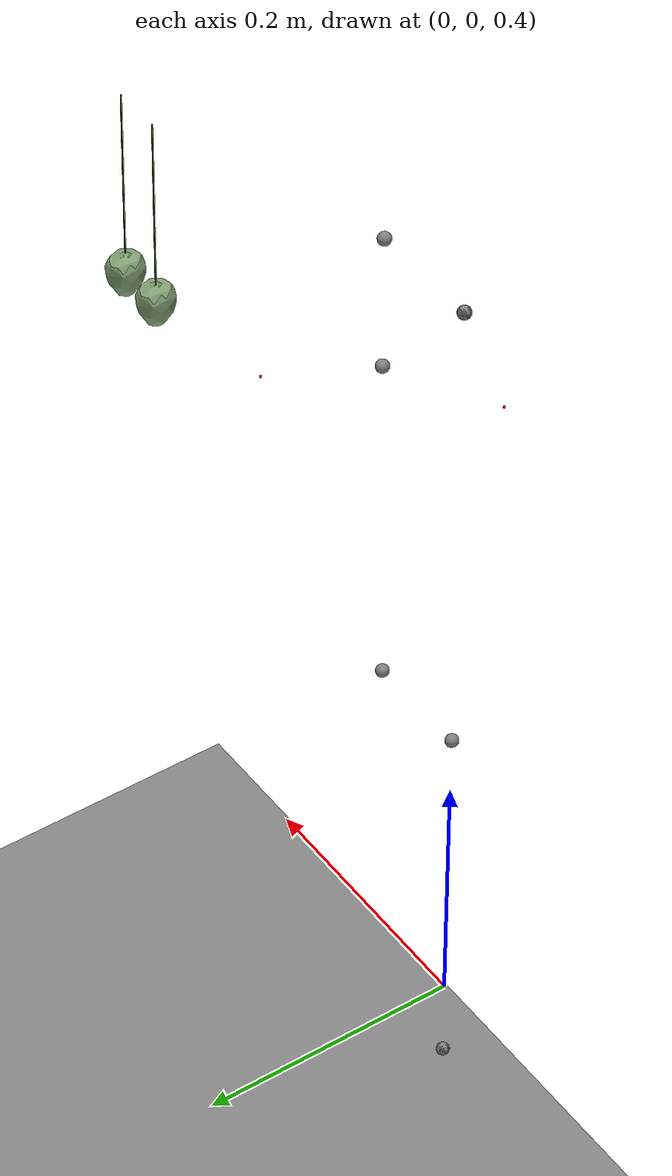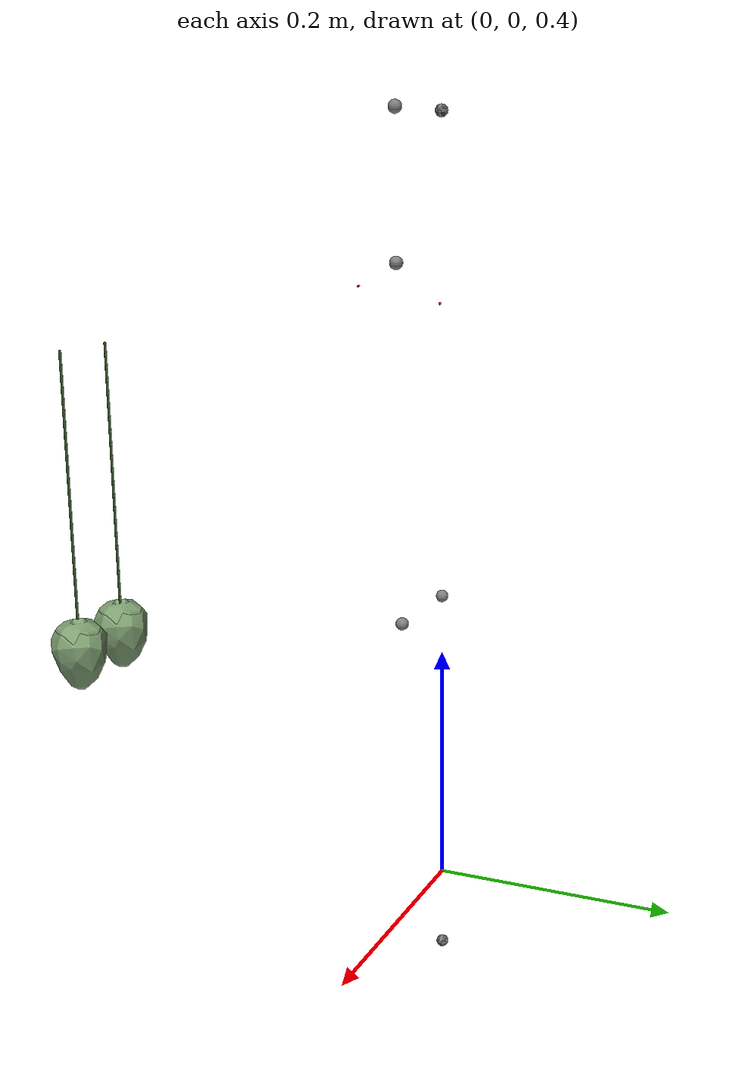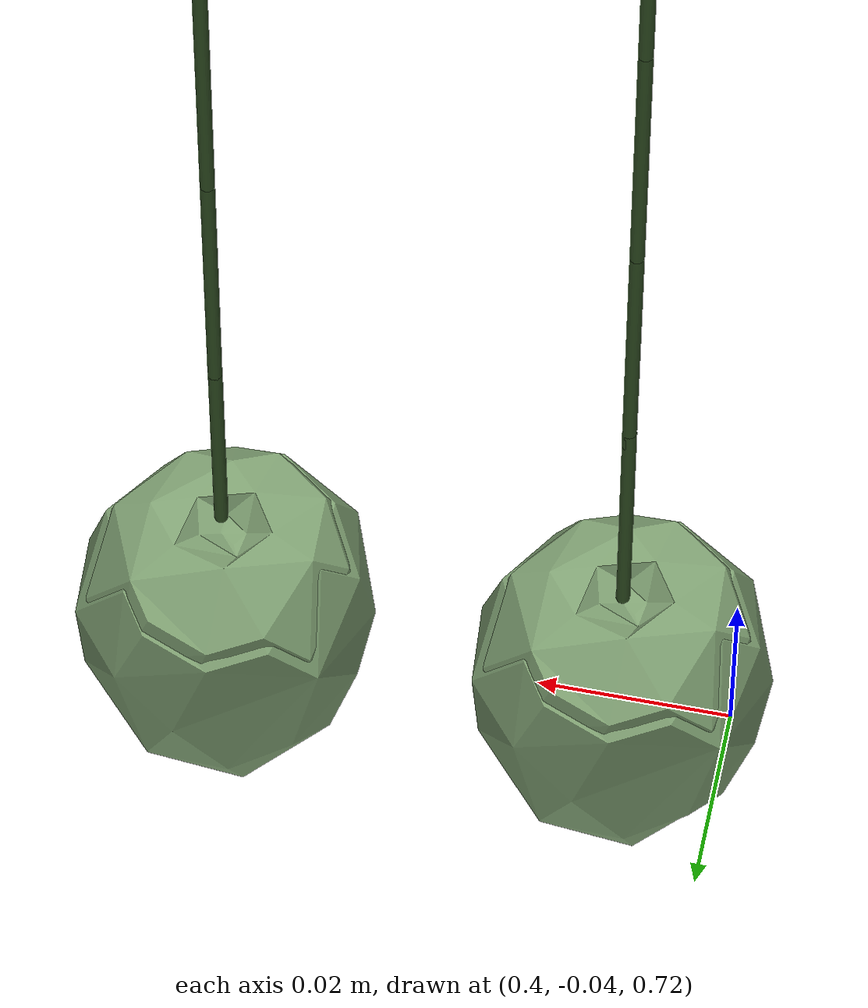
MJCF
<mujoco model="fruit_gym_physics_only">
  <compiler angle="radian" meshdir="assets/"/>

  <option noslip_tolerance="0" viscosity="0.0009" integrator="implicitfast" noslip_iterations="5">
    <flag multiccd="enable"/>
  </option>

  <size memory="80M"/>

  <statistic extent="1" center="0.3 0 0.4"/>

  <default>
    <default class="panda">
      <joint range="-2.8973 2.8973" armature="0.1" damping="1"/>
      <default class="finger">
        <joint type="slide" range="0 0.04"/>
      </default>
      <default class="collision">
        <geom type="mesh" group="3"/>
      </default>
    </default>
    <default class="d435i">
      <default class="d435i_collision">
        <geom type="mesh" group="3"/>
      </default>
    </default>
  </default>

  <custom>
    <text name="composite_a" data="rope_a"/>
    <text name="composite_b" data="rope_b"/>
    <text name="composite_c" data="rope_c"/>
  </custom>

  <asset>
    <material name="white" class="panda"/>
    <material name="off_white" class="panda"/>
    <material name="black" class="panda"/>
    <material name="Metal_Casing" class="d435i"/>
    <mesh name="link0_c" file="link0.stl"/>
    <mesh name="link1_c" file="link1.stl"/>
    <mesh name="link2_c" file="link2.stl"/>
    <mesh name="link3_c" file="link3.stl"/>
    <mesh name="link4_c" file="link4.stl"/>
    <mesh name="link5_c0" file="link5_collision_0.obj"/>
    <mesh name="link5_c1" file="link5_collision_1.obj"/>
    <mesh name="link5_c2" file="link5_collision_2.obj"/>
    <mesh name="link6_c" file="link6.stl"/>
    <mesh name="link7_c" file="link7.stl"/>
    <mesh name="finger_0" file="finger_0.obj"/>
    <mesh name="finger_1" file="finger_1.obj"/>
    <mesh name="camera_mount_c" file="camera_mount_collision_straight.stl"/>
    <mesh name="hand_c" file="hand.stl"/>
    <mesh name="gripper_long_inner" file="gripper_long_inner_new.stl"/>
    <mesh name="gripper_long_outer" file="gripper_long_outer_new.stl"/>

    <mesh name="strawberry_collision" file="strawberry_collision.obj" scale="0.12 0.12 0.12"/>
    <mesh name="strawberry_collision_big" file="strawberry_collision.obj" scale="0.13 0.13 0.13"/>
    <mesh name="strawberry_collision_small" file="strawberry_collision.obj" scale="0.11 0.11 0.11"/>
  </asset>

  <worldbody>
    <geom name="floor" size="0 0 0.05" pos="0 0 0" type="plane"/>
    <body name="link0" childclass="panda">
      <inertial pos="-0.041018 -0.00014 0.049974" quat="0.00630474 0.751245 0.00741774 0.659952" mass="0.629769" diaginertia="0.00430465 0.00387984 0.00313051"/>
      <geom class="collision" mesh="link0_c"/>
      <body name="link1" pos="0 0 0.333">
        <inertial pos="0.003875 0.002081 -0.04762" quat="0.711549 0.00634377 -0.0131124 0.702485" mass="4.97068" diaginertia="0.707137 0.703435 0.00852456"/>
        <joint name="joint1" pos="0 0 0" axis="0 0 1"/>
        <geom class="collision" mesh="link1_c"/>
        <site name="joint1" pos="0 0 0"/>
        <body name="link2" quat="0.707107 -0.707107 0 0">
          <inertial pos="-0.003141 -0.02872 0.003495" quat="-0.168175 0.828366 -0.122878 0.520027" mass="0.646926" diaginertia="0.0310326 0.0283001 0.00273425"/>
          <joint name="joint2" pos="0 0 0" axis="0 0 1" range="-1.7628 1.7628"/>
          <geom class="collision" mesh="link2_c"/>
          <site name="joint2" pos="0 0 0"/>
          <body name="link3" pos="0 -0.316 0" quat="0.707107 0.707107 0 0">
            <inertial pos="0.027518 0.039252 -0.066502" quat="0.662769 -0.00678331 0.252053 0.705096" mass="3.2286" diaginertia="0.0415014 0.0414793 0.00124635"/>
            <joint name="joint3" pos="0 0 0" axis="0 0 1"/>
            <geom class="collision" mesh="link3_c"/>
            <site name="joint3" pos="0 0 0"/>
            <body name="link4" pos="0.0825 0 0" quat="0.707107 0.707107 0 0">
              <inertial pos="-0.05317 0.104419 0.027454" quat="0.65058 0.529822 -0.0962034 0.535518" mass="3.5879" diaginertia="0.0349596 0.0281483 0.0106201"/>
              <joint name="joint4" pos="0 0 0" axis="0 0 1" range="-3.0718 -0.0698"/>
              <geom class="collision" mesh="link4_c"/>
              <site name="joint4" pos="0 0 0"/>
              <body name="link5" pos="-0.0825 0.384 0" quat="0.707107 -0.707107 0 0">
                <inertial pos="-0.011953 0.041065 -0.038437" quat="0.987313 -0.0121954 0.0719187 -0.141037" mass="1.22595" diaginertia="0.0367625 0.0288531 0.00803437"/>
                <joint name="joint5" pos="0 0 0" axis="0 0 1"/>
                <geom class="collision" mesh="link5_c0"/>
                <geom class="collision" mesh="link5_c1"/>
                <geom class="collision" mesh="link5_c2"/>
                <site name="joint5" pos="0 0 0"/>
                <body name="link6" quat="0.707107 0.707107 0 0">
                  <inertial pos="0.060149 -0.014117 -0.010517" quat="0.101075 0.59332 0.0287227 0.798079" mass="1.66656" diaginertia="0.00584276 0.00431037 0.00159787"/>
                  <joint name="joint6" pos="0 0 0" axis="0 0 1" range="-0.0175 3.7525"/>
                  <geom class="collision" mesh="link6_c"/>
                  <site name="joint6" pos="0 0 0"/>
                  <body name="link7" pos="0.088 0 0" quat="0.707107 0.707107 0 0">
                    <inertial pos="0.010517 -0.004252 0.061597" quat="0.992939 -0.0762041 0.0733595 -0.0537067" mass="0.735522" diaginertia="0.0127345 0.0101055 0.00451803"/>
                    <joint name="joint7" pos="0 0 0" axis="0 0 1"/>
                    <geom class="collision" mesh="link7_c"/>
                    <site name="joint7" pos="0 0 0"/>
                    <body name="camera_mount" pos="0 0 0.107">
                      <inertial pos="0 0 0" mass="0.5" diaginertia="0 0 0"/>
                      <geom class="collision" mesh="camera_mount_c"/>
                      <body name="d435i_1" childclass="d435i" pos="-0.079892 0.03393 0.026921" quat="0.909844 0.16043 0.0664523 0.37687">
                        <geom class="d435i_collision" size="0.00968864 0.0334784" pos="0.00145113 -0.000319327 -0.0135412" quat="0.029024 0.708312 0.0275527 0.704764" type="capsule" mass="0"/>
                        <site name="camera_1_site" pos="0.0325 0 -0.003" size="0.001" rgba="1 0 0 1"/>
                        <body name="wrist1" pos="0.0325 0 -0.003" quat="0 0 1 0">
                          <camera name="wrist1" pos="0 0 0" fovy="42"/>
                        </body>
                      </body>
                      <body name="d435i_2" childclass="d435i" pos="0.079892 -0.03393 0.026921" quat="0.376958 0.0664679 -0.160424 -0.909807">
                        <geom class="d435i_collision" size="0.00968864 0.0334784" pos="0.00145113 -0.000319327 -0.0135412" quat="0.029024 0.708312 0.0275527 0.704764" type="capsule" mass="0"/>
                        <site name="camera_2_site" pos="0.0325 0 -0.003" quat="0 0 1 0" size="0.001" rgba="1 0 0 1"/>
                        <body name="wrist2" pos="0.0325 0 -0.003" quat="0 0 1 0">
                          <camera name="wrist2" pos="0 0 0" fovy="42"/>
                        </body>
                      </body>
                      <body name="hand" pos="0 0 0.0016" quat="0.92388 0 0 -0.382683">
                        <inertial pos="-0.01 0 0.03" mass="0.73" diaginertia="0.001 0.0025 0.0017"/>
                        <geom class="collision" mesh="hand_c"/>
                        <site name="attachment_site" pos="0 0 0" quat="0 0 0 1"/>
                        <body name="pinch" pos="0 0 0.105">
                          <site name="pinch" pos="0 0 0" size="0.01" group="3" rgba="1 0 0 1"/>
                        </body>
                        <body name="long_pinch" pos="0 0 0.135">
                          <site name="long_pinch" pos="0 0 0" size="0.01" group="3" rgba="1 0 0 1"/>
                        </body>
                        <body name="left_finger" pos="0 0 0.0584">
                          <inertial pos="0 0 0" mass="0.015" diaginertia="2.375e-06 2.375e-06 7.5e-07"/>
                          <joint name="finger_joint1" class="finger" pos="0 0 0" axis="0 1 0"/>
                          <geom class="collision" mesh="finger_0"/>
                          <geom name="left_finger_outer" class="collision" friction="2.0 0.1 0.05" mesh="gripper_long_outer" solref="0.01 0.5"/>
                          <geom name="left_finger_inner" class="collision" friction="2.0 0.1 0.05" mesh="gripper_long_inner" solref="0.01 0.5"/>
                        </body>
                        <body name="right_finger" pos="0 0 0.0584" quat="0 0 0 1">
                          <inertial pos="0 0 0" mass="0.015" diaginertia="2.375e-06 2.375e-06 7.5e-07"/>
                          <joint name="finger_joint2" class="finger" pos="0 0 0" axis="0 1 0"/>
                          <geom class="collision" mesh="finger_0"/>
                          <geom name="right_finger_outer" class="collision" friction="2.0 0.1 0.05" mesh="gripper_long_outer" solref="0.01 0.5"/>
                          <geom name="right_finger_inner" class="collision" friction="2.0 0.1 0.05" mesh="gripper_long_inner" solref="0.01 0.5" group="4"/>
                        </body>
                      </body>
                    </body>
                  </body>
                </body>
              </body>
            </body>
          </body>
        </body>
      </body>
    </body>

    <body name="light0" pos="0.3 0 1.6">
      <light pos="0 0 0" dir="0 0 -1" ambient="0.1 0.1 0.1" diffuse="0.2 0.2 0.2"/>
    </body>
    <body name="target" pos="0.15 0 0.5" quat="1 0 0 0" mocap="true">
      <geom name="target" size="0.03 0.03 0.03" type="box" contype="0" conaffinity="0" rgba="0.6 0.3 0.3 0"/>
    </body>

    <body name="vine1" pos="0.45 -0.03 0.9" quat="0.707388 0 0.706825 0">
      <body name="aB_first">
        <joint name="aJ_first" pos="0 0 0" type="ball" group="3" actuatorfrclimited="false" damping="0.001"/>
        <geom name="aG0" size="0.0007 0.015" pos="0.015 0 0" quat="0.707107 0 -0.707107 0" type="capsule" solref="0.01 0.1" mass="0.0001" rgba="0.208 0.337 0.149 1"/>
        <site name="aS_first" pos="0 0 0" group="3"/>
        <body name="aB_1" pos="0.03 0 0">
          <joint name="aJ_1" pos="0 0 0" type="ball" group="3" actuatorfrclimited="false" damping="0.001"/>
          <geom name="aG1" size="0.0007 0.015" pos="0.015 0 0" quat="0.707107 0 -0.707107 0" type="capsule" solref="0.01 0.1" mass="0.0001" rgba="0.208 0.337 0.149 1"/>
          <body name="aB_2" pos="0.03 0 0">
            <joint name="aJ_2" pos="0 0 0" type="ball" group="3" actuatorfrclimited="false" damping="0.001"/>
            <geom name="aG2" size="0.0007 0.015" pos="0.015 0 0" quat="0.707107 0 -0.707107 0" type="capsule" solref="0.01 0.1" mass="0.0001" rgba="0.208 0.337 0.149 1"/>
            <body name="aB_last" pos="0.03 0 0">
              <joint name="aJ_last" pos="0 0 0" type="ball" group="3" actuatorfrclimited="false" damping="0.001"/>
              <geom name="aG3" size="0.0007 0.015" pos="0.015 0 0" quat="0.707107 0 -0.707107 0" type="capsule" solref="0.01 0.1" mass="0.0001" rgba="0.208 0.337 0.149 1"/>
              <site name="aS_last" pos="0.03 0 0" group="3"/>
              <body name="stem1" pos="0.091 -0.00024 0.00052" quat="0.707388 0 0 0.706825">
                <geom name="stem1" type="capsule" size="0.0007 0.012" pos="0.0002 0.049 -0.00055" euler="-1.57 0.0 0.0" rgba="0.208 0.337 0.149 1"/>
                <site name="stem1" pos="0.0001 0.054 -0.0004" size="0.0012" rgba="0 0 1 1" group="3"/>
                <site name="stem1_grasp" pos="0.0001 0.041 -0.0004" size="0.0012" rgba="0 0 1 1" group="3"/>
                <body name="block1" pos="0.0 0.001 0.0">
                  <site type="box" pos="0 0.015 0" size="0.015 0.02 0.015" group="3" rgba="0 1 0 0.2"/>
                  <geom name="block1" type="mesh" mesh="strawberry_collision" density="400" rgba="0.5 0.63 0.45 1"/>
                </body>
                <body name="block1_big" pos="0 -0.003 0">
                  <geom name="block1_big" type="mesh" mesh="strawberry_collision_big" density="400" rgba="0.5 0.63 0.45 1"/>
                </body>
                <body name="block1_small" pos="0 0.003 0">
                  <geom name="block1_small" type="mesh" mesh="strawberry_collision_small" density="400" rgba="0.5 0.63 0.45 1"/>
                </body>
              </body>
            </body>
          </body>
        </body>
      </body>
    </body>
    <body name="vine2" pos="0.41 -0.03 0.9" quat="0.707388 0 0.706825 0">
      <body name="bB_first">
        <joint name="bJ_first" pos="0 0 0" type="ball" group="3" actuatorfrclimited="false" damping="0.001"/>
        <geom name="bG0" size="0.0007 0.015" pos="0.015 0 0" quat="0.707107 0 -0.707107 0" type="capsule" solref="0.01 0.1" mass="0.0001" rgba="0.208 0.337 0.149 1"/>
        <site name="bS_first" pos="0 0 0" group="3"/>
        <body name="bB_1" pos="0.03 0 0">
          <joint name="bJ_1" pos="0 0 0" type="ball" group="3" actuatorfrclimited="false" damping="0.001"/>
          <geom name="bG1" size="0.0007 0.015" pos="0.015 0 0" quat="0.707107 0 -0.707107 0" type="capsule" solref="0.01 0.1" mass="0.0001" rgba="0.208 0.337 0.149 1"/>
          <body name="bB_2" pos="0.03 0 0">
            <joint name="bJ_2" pos="0 0 0" type="ball" group="3" actuatorfrclimited="false" damping="0.001"/>
            <geom name="bG2" size="0.0007 0.015" pos="0.015 0 0" quat="0.707107 0 -0.707107 0" type="capsule" solref="0.01 0.1" mass="0.0001" rgba="0.208 0.337 0.149 1"/>
            <body name="bB_last" pos="0.03 0 0">
              <joint name="bJ_last" pos="0 0 0" type="ball" group="3" actuatorfrclimited="false" damping="0.001"/>
              <geom name="bG3" size="0.0007 0.015" pos="0.015 0 0" quat="0.707107 0 -0.707107 0" type="capsule" solref="0.01 0.1" mass="0.0001" rgba="0.208 0.337 0.149 1"/>
              <site name="bS_last" pos="0.03 0 0" group="3"/>
              <body name="stem2" pos="0.091 -0.00024 0.00052" quat="0.707388 0 0 0.706825">
                <geom name="stem2" type="capsule" size="0.0007 0.014" pos="0.0002 0.049 -0.00055" euler="-1.57 0.0 0.0" rgba="0.208 0.337 0.149 1"/>
                <site name="stem2" pos="0.0001 0.054 -0.0004" size="0.0012" rgba="0 0 1 1" group="3"/>
                <site name="stem2_grasp" pos="0.0001 0.041 -0.0004" size="0.0012" rgba="0 0 1 1" group="3"/>
                <body name="block2" pos="0.0 0.001 0.0">
                  <geom name="block2" type="mesh" mesh="strawberry_collision" density="400" rgba="0.5 0.63 0.45 1"/>
                </body>
                <body name="block2_big" pos="0 -0.003 0">
                  <geom name="block2_big" type="mesh" mesh="strawberry_collision_big" density="400" rgba="0.5 0.63 0.45 1"/>
                </body>
                <body name="block2_small" pos="0 0.003 0">
                  <geom name="block2_small" type="mesh" mesh="strawberry_collision_small" density="400" rgba="0.5 0.63 0.45 1"/>
                </body>
              </body>
            </body>
          </body>
        </body>
      </body>
    </body>

    <body name="vine3" pos="0.41 -0.03 0.9" quat="0.707388 0 0.706825 0">
      <body name="cB_first">
        <joint name="cJ_first" pos="0 0 0" type="ball" group="3" actuatorfrclimited="false" damping="0.001"/>
        <geom name="cG0" size="0.0007 0.015" pos="0.015 0 0" quat="0.707107 0 -0.707107 0" type="capsule" solref="0.01 0.1" mass="0.0001" rgba="0.208 0.337 0.149 1"/>
        <site name="cS_first" pos="0 0 0" group="3"/>
        <body name="cB_1" pos="0.03 0 0">
          <joint name="cJ_1" pos="0 0 0" type="ball" group="3" actuatorfrclimited="false" damping="0.001"/>
          <geom name="cG1" size="0.0007 0.015" pos="0.015 0 0" quat="0.707107 0 -0.707107 0" type="capsule" solref="0.01 0.1" mass="0.0001" rgba="0.208 0.337 0.149 1"/>
          <body name="cB_2" pos="0.03 0 0">
            <joint name="cJ_2" pos="0 0 0" type="ball" group="3" actuatorfrclimited="false" damping="0.001"/>
            <geom name="cG2" size="0.0007 0.015" pos="0.015 0 0" quat="0.707107 0 -0.707107 0" type="capsule" solref="0.01 0.1" mass="0.0001" rgba="0.208 0.337 0.149 1"/>
            <body name="cB_last" pos="0.03 0 0">
              <joint name="cJ_last" pos="0 0 0" type="ball" group="3" actuatorfrclimited="false" damping="0.001"/>
              <geom name="cG3" size="0.0007 0.015" pos="0.015 0 0" quat="0.707107 0 -0.707107 0" type="capsule" solref="0.01 0.1" mass="0.0001" rgba="0.208 0.337 0.149 1"/>
              <site name="cS_last" pos="0.03 0 0" group="3"/>
              <body name="stem3" pos="0.091 -0.00024 0.00052" quat="0.707388 0 0 0.706825">
                <geom name="stem3" type="capsule" size="0.0007 0.014" pos="0.0002 0.049 -0.00055" euler="-1.57 0.0 0.0" rgba="0.208 0.337 0.149 1"/>
                <site name="stem3" pos="0.0001 0.054 -0.0004" size="0.0012" rgba="0 0 1 1" group="3"/>
                <site name="stem3_grasp" pos="0.0001 0.041 -0.0004" size="0.0012" rgba="0 0 1 1" group="3"/>
                <body name="block3" pos="0.0 0.001 0.0">
                  <geom name="block3" type="mesh" mesh="strawberry_collision" density="400" rgba="0.5 0.63 0.45 1"/>
                </body>
                <body name="block3_big" pos="0 -0.003 0">
                  <geom name="block3_big" type="mesh" mesh="strawberry_collision_big" density="400" rgba="0.5 0.63 0.45 1"/>
                </body>
                <body name="block3_small" pos="0 0.003 0">
                  <geom name="block3_small" type="mesh" mesh="strawberry_collision_small" density="400" rgba="0.5 0.63 0.45 1"/>
                </body>
              </body>
            </body>
          </body>
        </body>
      </body>
    </body>

    <body name="vine4" pos="0.41 -0.03 0.9" quat="0.707388 0 0.706825 0">
      <body name="dB_first">
        <joint name="dJ_first" pos="0 0 0" type="ball" group="3" actuatorfrclimited="false" damping="0.001"/>
        <geom name="dG0" size="0.0007 0.015" pos="0.015 0 0" quat="0.707107 0 -0.707107 0" type="capsule" solref="0.01 0.1" mass="0.0001" rgba="0.208 0.337 0.149 1"/>
        <site name="dS_first" pos="0 0 0" group="3"/>
        <body name="dB_1" pos="0.03 0 0">
          <joint name="dJ_1" pos="0 0 0" type="ball" group="3" actuatorfrclimited="false" damping="0.001"/>
          <geom name="dG1" size="0.0007 0.015" pos="0.015 0 0" quat="0.707107 0 -0.707107 0" type="capsule" solref="0.01 0.1" mass="0.0001" rgba="0.208 0.337 0.149 1"/>
          <body name="dB_2" pos="0.03 0 0">
            <joint name="dJ_2" pos="0 0 0" type="ball" group="3" actuatorfrclimited="false" damping="0.001"/>
            <geom name="dG2" size="0.0007 0.015" pos="0.015 0 0" quat="0.707107 0 -0.707107 0" type="capsule" solref="0.01 0.1" mass="0.0001" rgba="0.208 0.337 0.149 1"/>
            <body name="dB_last" pos="0.03 0 0">
              <joint name="dJ_last" pos="0 0 0" type="ball" group="3" actuatorfrclimited="false" damping="0.001"/>
              <geom name="dG3" size="0.0007 0.015" pos="0.015 0 0" quat="0.707107 0 -0.707107 0" type="capsule" solref="0.01 0.1" mass="0.0001" rgba="0.208 0.337 0.149 1"/>
              <site name="dS_last" pos="0.03 0 0" group="3"/>
              <body name="stem4" pos="0.091 -0.00024 0.00052" quat="0.707388 0 0 0.706825">
                <geom name="stem4" type="capsule" size="0.0007 0.014" pos="0.0002 0.049 -0.00055" euler="-1.57 0.0 0.0" rgba="0.208 0.337 0.149 1"/>
                <site name="stem4" pos="0.0001 0.054 -0.0004" size="0.0012" rgba="0 0 1 1" group="3"/>
                <site name="stem4_grasp" pos="0.0001 0.041 -0.0004" size="0.0012" rgba="0 0 1 1" group="3"/>
                <body name="block4" pos="0.0 0.001 0.0">
                  <geom name="block4" type="mesh" mesh="strawberry_collision" density="400" rgba="0.5 0.63 0.45 1"/>
                </body>
                <body name="block4_big" pos="0 -0.003 0">
                  <geom name="block4_big" type="mesh" mesh="strawberry_collision_big" density="400" rgba="0.5 0.63 0.45 1"/>
                </body>
                <body name="block4_small" pos="0 0.003 0">
                  <geom name="block4_small" type="mesh" mesh="strawberry_collision_small" density="400" rgba="0.5 0.63 0.45 1"/>
                </body>
              </body>
            </body>
          </body>
        </body>
      </body>
    </body>

    <body name="vine5" pos="0.41 -0.03 0.9" quat="0.707388 0 0.706825 0">
      <body name="eB_first">
        <joint name="eJ_first" pos="0 0 0" type="ball" group="3" actuatorfrclimited="false" damping="0.001"/>
        <geom name="eG0" size="0.0007 0.015" pos="0.015 0 0" quat="0.707107 0 -0.707107 0" type="capsule" solref="0.01 0.1" mass="0.0001" rgba="0.208 0.337 0.149 1"/>
        <site name="eS_first" pos="0 0 0" group="3"/>
        <body name="eB_1" pos="0.03 0 0">
          <joint name="eJ_1" pos="0 0 0" type="ball" group="3" actuatorfrclimited="false" damping="0.001"/>
          <geom name="eG1" size="0.0007 0.015" pos="0.015 0 0" quat="0.707107 0 -0.707107 0" type="capsule" solref="0.01 0.1" mass="0.0001" rgba="0.208 0.337 0.149 1"/>
          <body name="eB_2" pos="0.03 0 0">
            <joint name="eJ_2" pos="0 0 0" type="ball" group="3" actuatorfrclimited="false" damping="0.001"/>
            <geom name="eG2" size="0.0007 0.015" pos="0.015 0 0" quat="0.707107 0 -0.707107 0" type="capsule" solref="0.01 0.1" mass="0.0001" rgba="0.208 0.337 0.149 1"/>
            <body name="eB_last" pos="0.03 0 0">
              <joint name="eJ_last" pos="0 0 0" type="ball" group="3" actuatorfrclimited="false" damping="0.001"/>
              <geom name="eG3" size="0.0007 0.015" pos="0.015 0 0" quat="0.707107 0 -0.707107 0" type="capsule" solref="0.01 0.1" mass="0.0001" rgba="0.208 0.337 0.149 1"/>
              <site name="eS_last" pos="0.03 0 0" group="3"/>
              <body name="stem5" pos="0.091 -0.00024 0.00052" quat="0.707388 0 0 0.706825">
                <geom name="stem5" type="capsule" size="0.0007 0.014" pos="0.0002 0.049 -0.00055" euler="-1.57 0.0 0.0" rgba="0.208 0.337 0.149 1"/>
                <site name="stem5" pos="0.0001 0.054 -0.0004" size="0.0012" rgba="0 0 1 1" group="3"/>
                <site name="stem5_grasp" pos="0.0001 0.041 -0.0004" size="0.0012" rgba="0 0 1 1" group="3"/>
                <body name="block5" pos="0.0 0.001 0.0">
                  <geom name="block5" type="mesh" mesh="strawberry_collision" density="400" rgba="0.5 0.63 0.45 1"/>
                </body>
                <body name="block5_big" pos="0 -0.003 0">
                  <geom name="block5_big" type="mesh" mesh="strawberry_collision_big" density="400" rgba="0.5 0.63 0.45 1"/>
                </body>
                <body name="block5_small" pos="0 0.003 0">
                  <geom name="block5_small" type="mesh" mesh="strawberry_collision_small" density="400" rgba="0.5 0.63 0.45 1"/>
                </body>
              </body>
            </body>
          </body>
        </body>
      </body>
    </body>

    <body name="vine6" pos="0.41 -0.03 0.9" quat="0.707388 0 0.706825 0">
      <body name="fB_first">
        <joint name="fJ_first" pos="0 0 0" type="ball" group="3" actuatorfrclimited="false" damping="0.001"/>
        <geom name="fG0" size="0.0007 0.015" pos="0.015 0 0" quat="0.707107 0 -0.707107 0" type="capsule" solref="0.01 0.1" mass="0.0001" rgba="0.208 0.337 0.149 1"/>
        <site name="fS_first" pos="0 0 0" group="3"/>
        <body name="fB_1" pos="0.03 0 0">
          <joint name="fJ_1" pos="0 0 0" type="ball" group="3" actuatorfrclimited="false" damping="0.001"/>
          <geom name="fG1" size="0.0007 0.015" pos="0.015 0 0" quat="0.707107 0 -0.707107 0" type="capsule" solref="0.01 0.1" mass="0.0001" rgba="0.208 0.337 0.149 1"/>
          <body name="fB_2" pos="0.03 0 0">
            <joint name="fJ_2" pos="0 0 0" type="ball" group="3" actuatorfrclimited="false" damping="0.001"/>
            <geom name="fG2" size="0.0007 0.015" pos="0.015 0 0" quat="0.707107 0 -0.707107 0" type="capsule" solref="0.01 0.1" mass="0.0001" rgba="0.208 0.337 0.149 1"/>
            <body name="fB_last" pos="0.03 0 0">
              <joint name="fJ_last" pos="0 0 0" type="ball" group="3" actuatorfrclimited="false" damping="0.001"/>
              <geom name="fG3" size="0.0007 0.015" pos="0.015 0 0" quat="0.707107 0 -0.707107 0" type="capsule" solref="0.01 0.1" mass="0.0001" rgba="0.208 0.337 0.149 1"/>
              <site name="fS_last" pos="0.03 0 0" group="3"/>
              <body name="stem6" pos="0.091 -0.00024 0.00052" quat="0.707388 0 0 0.706825">
                <geom name="stem6" type="capsule" size="0.0007 0.014" pos="0.0002 0.049 -0.00055" euler="-1.57 0.0 0.0" rgba="0.208 0.337 0.149 1"/>
                <site name="stem6" pos="0.0001 0.054 -0.0004" size="0.0012" rgba="0 0 1 1" group="3"/>
                <site name="stem6_grasp" pos="0.0001 0.041 -0.0004" size="0.0012" rgba="0 0 1 1" group="3"/>
                <body name="block6" pos="0.0 0.001 0.0">
                  <geom name="block6" type="mesh" mesh="strawberry_collision" density="400" rgba="0.5 0.63 0.45 1"/>
                </body>
                <body name="block6_big" pos="0 -0.003 0">
                  <geom name="block6_big" type="mesh" mesh="strawberry_collision_big" density="400" rgba="0.5 0.63 0.45 1"/>
                </body>
                <body name="block6_small" pos="0 0.003 0">
                  <geom name="block6_small" type="mesh" mesh="strawberry_collision_small" density="400" rgba="0.5 0.63 0.45 1"/>
                </body>
              </body>
            </body>
          </body>
        </body>
      </body>
    </body>

    <body name="vine7" pos="0.41 -0.03 0.9" quat="0.707388 0 0.706825 0">
      <body name="gB_first">
        <joint name="gJ_first" pos="0 0 0" type="ball" group="3" actuatorfrclimited="false" damping="0.001"/>
        <geom name="gG0" size="0.0007 0.015" pos="0.015 0 0" quat="0.707107 0 -0.707107 0" type="capsule" solref="0.01 0.1" mass="0.0001" rgba="0.208 0.337 0.149 1"/>
        <site name="gS_first" pos="0 0 0" group="3"/>
        <body name="gB_1" pos="0.03 0 0">
          <joint name="gJ_1" pos="0 0 0" type="ball" group="3" actuatorfrclimited="false" damping="0.001"/>
          <geom name="gG1" size="0.0007 0.015" pos="0.015 0 0" quat="0.707107 0 -0.707107 0" type="capsule" solref="0.01 0.1" mass="0.0001" rgba="0.208 0.337 0.149 1"/>
          <body name="gB_2" pos="0.03 0 0">
            <joint name="gJ_2" pos="0 0 0" type="ball" group="3" actuatorfrclimited="false" damping="0.001"/>
            <geom name="gG2" size="0.0007 0.015" pos="0.015 0 0" quat="0.707107 0 -0.707107 0" type="capsule" solref="0.01 0.1" mass="0.0001" rgba="0.208 0.337 0.149 1"/>
            <body name="gB_last" pos="0.03 0 0">
              <joint name="gJ_last" pos="0 0 0" type="ball" group="3" actuatorfrclimited="false" damping="0.001"/>
              <geom name="gG3" size="0.0007 0.015" pos="0.015 0 0" quat="0.707107 0 -0.707107 0" type="capsule" solref="0.01 0.1" mass="0.0001" rgba="0.208 0.337 0.149 1"/>
              <site name="gS_last" pos="0.03 0 0" group="3"/>
              <body name="stem7" pos="0.091 -0.00024 0.00052" quat="0.707388 0 0 0.706825">
                <geom name="stem7" type="capsule" size="0.0007 0.014" pos="0.0002 0.049 -0.00055" euler="-1.57 0.0 0.0" rgba="0.208 0.337 0.149 1"/>
                <site name="stem7" pos="0.0001 0.054 -0.0004" size="0.0012" rgba="0 0 1 1" group="3"/>
                <site name="stem7_grasp" pos="0.0001 0.041 -0.0004" size="0.0012" rgba="0 0 1 1" group="3"/>
                <body name="block7" pos="0.0 0.001 0.0">
                  <geom name="block7" type="mesh" mesh="strawberry_collision" density="400" rgba="0.5 0.63 0.45 1"/>
                </body>
                <body name="block7_big" pos="0 -0.003 0">
                  <geom name="block7_big" type="mesh" mesh="strawberry_collision_big" density="400" rgba="0.5 0.63 0.45 1"/>
                </body>
                <body name="block7_small" pos="0 0.003 0">
                  <geom name="block7_small" type="mesh" mesh="strawberry_collision_small" density="400" rgba="0.5 0.63 0.45 1"/>
                </body>
              </body>
            </body>
          </body>
        </body>
      </body>
    </body>

    <body name="vine8" pos="0.41 -0.03 0.9" quat="0.707388 0 0.706825 0">
      <body name="hB_first">
        <joint name="hJ_first" pos="0 0 0" type="ball" group="3" actuatorfrclimited="false" damping="0.001"/>
        <geom name="hG0" size="0.0007 0.015" pos="0.015 0 0" quat="0.707107 0 -0.707107 0" type="capsule" solref="0.01 0.1" mass="0.0001" rgba="0.208 0.337 0.149 1"/>
        <site name="hS_first" pos="0 0 0" group="3"/>
        <body name="hB_1" pos="0.03 0 0">
          <joint name="hJ_1" pos="0 0 0" type="ball" group="3" actuatorfrclimited="false" damping="0.001"/>
          <geom name="hG1" size="0.0007 0.015" pos="0.015 0 0" quat="0.707107 0 -0.707107 0" type="capsule" solref="0.01 0.1" mass="0.0001" rgba="0.208 0.337 0.149 1"/>
          <body name="hB_2" pos="0.03 0 0">
            <joint name="hJ_2" pos="0 0 0" type="ball" group="3" actuatorfrclimited="false" damping="0.001"/>
            <geom name="hG2" size="0.0007 0.015" pos="0.015 0 0" quat="0.707107 0 -0.707107 0" type="capsule" solref="0.01 0.1" mass="0.0001" rgba="0.208 0.337 0.149 1"/>
            <body name="hB_last" pos="0.03 0 0">
              <joint name="hJ_last" pos="0 0 0" type="ball" group="3" actuatorfrclimited="false" damping="0.001"/>
              <geom name="hG3" size="0.0007 0.015" pos="0.015 0 0" quat="0.707107 0 -0.707107 0" type="capsule" solref="0.01 0.1" mass="0.0001" rgba="0.208 0.337 0.149 1"/>
              <site name="hS_last" pos="0.03 0 0" group="3"/>
              <body name="stem8" pos="0.091 -0.00024 0.00052" quat="0.707388 0 0 0.706825">
                <geom name="stem8" type="capsule" size="0.0007 0.014" pos="0.0002 0.049 -0.00055" euler="-1.57 0.0 0.0" rgba="0.208 0.337 0.149 1"/>
                <site name="stem8" pos="0.0001 0.054 -0.0004" size="0.0012" rgba="0 0 1 1" group="3"/>
                <site name="stem8_grasp" pos="0.0001 0.041 -0.0004" size="0.0012" rgba="0 0 1 1" group="3"/>
                <body name="block8" pos="0.0 0.001 0.0">
                  <geom name="block8" type="mesh" mesh="strawberry_collision" density="400" rgba="0.5 0.63 0.45 1"/>
                </body>
                <body name="block8_big" pos="0 -0.003 0">
                  <geom name="block8_big" type="mesh" mesh="strawberry_collision_big" density="400" rgba="0.5 0.63 0.45 1"/>
                </body>
                <body name="block8_small" pos="0 0.003 0">
                  <geom name="block8_small" type="mesh" mesh="strawberry_collision_small" density="400" rgba="0.5 0.63 0.45 1"/>
                </body>
              </body>
            </body>
          </body>
        </body>
      </body>
    </body>
  </worldbody>

  <contact>
    <exclude body1="aB_first" body2="aB_1"/>
    <exclude body1="aB_1" body2="aB_2"/>
    <exclude body1="aB_2" body2="aB_last"/>
    <exclude body1="aB_last" body2="stem1"/>
    <exclude body1="bB_first" body2="bB_1"/>
    <exclude body1="bB_1" body2="bB_2"/>
    <exclude body1="bB_2" body2="bB_last"/>
    <exclude body1="bB_last" body2="stem2"/>
    <exclude body1="cB_first" body2="cB_1"/>
    <exclude body1="cB_1" body2="cB_2"/>
    <exclude body1="cB_2" body2="cB_last"/>
    <exclude body1="cB_last" body2="stem3"/>
    <exclude body1="dB_first" body2="dB_1"/>
    <exclude body1="dB_1" body2="dB_2"/>
    <exclude body1="dB_2" body2="dB_last"/>
    <exclude body1="dB_last" body2="stem4"/>
    <exclude body1="eB_first" body2="eB_1"/>
    <exclude body1="eB_1" body2="eB_2"/>
    <exclude body1="eB_2" body2="eB_last"/>
    <exclude body1="eB_last" body2="stem5"/>
    <exclude body1="fB_first" body2="fB_1"/>
    <exclude body1="fB_1" body2="fB_2"/>
    <exclude body1="fB_2" body2="fB_last"/>
    <exclude body1="cB_last" body2="stem6"/>
    <exclude body1="gB_first" body2="gB_1"/>
    <exclude body1="gB_1" body2="gB_2"/>
    <exclude body1="gB_2" body2="gB_last"/>
    <exclude body1="gB_last" body2="stem7"/>
    <exclude body1="hB_first" body2="hB_1"/>
    <exclude body1="hB_1" body2="hB_2"/>
    <exclude body1="hB_2" body2="hB_last"/>
    <exclude body1="hB_last" body2="stem8"/>
  </contact>

  <equality>
    <joint joint1="finger_joint1" joint2="finger_joint2" solimp="0.95 0.99 0.001" solref="0.005 1"/>
  </equality>

  <actuator>
    <general name="actuator1" class="panda" joint="joint1" forcerange="-87 87"/>
    <general name="actuator2" class="panda" joint="joint2" forcerange="-87 87"/>
    <general name="actuator3" class="panda" joint="joint3" forcerange="-87 87"/>
    <general name="actuator4" class="panda" joint="joint4" forcerange="-87 87"/>
    <general name="actuator5" class="panda" joint="joint5" forcerange="-12 12"/>
    <general name="actuator6" class="panda" joint="joint6" forcerange="-12 12"/>
    <general name="actuator7" class="panda" joint="joint7" forcerange="-12 12"/>
    <position name="fingers_actuator" joint="finger_joint1" kp="5000" kv="500" ctrlrange="0 0.04" forcerange="-100 100"/>
  </actuator>

  <sensor>
    <force site="attachment_site" name="panda/wrist_force"/>
    <framepos objtype="site" objname="pinch" name="pinch_pos"/>
    <framequat objtype="site" objname="pinch" name="pinch_quat"/>
    <framelinvel objtype="site" objname="pinch" name="pinch_vel"/>
    <framepos objtype="site" objname="long_pinch" name="long_pinch_pos"/>
    <framequat objtype="site" objname="long_pinch" name="long_pinch_quat"/>
    <framelinvel objtype="site" objname="long_pinch" name="long_pinch_vel"/>
    <framequat objtype="geom" objname="block1" name="block_quat"/>
    <framepos objtype="site" objname="stem1_grasp" name="stem1_pos"/>
    <framepos objtype="site" objname="stem2_grasp" name="stem2_pos"/>
    <framepos objtype="site" objname="stem3_grasp" name="stem3_pos"/>
    <framepos objtype="site" objname="stem4_grasp" name="stem4_pos"/>
    <framepos objtype="site" objname="stem5_grasp" name="stem5_pos"/>
    <framepos objtype="site" objname="stem6_grasp" name="stem6_pos"/>
    <framepos objtype="site" objname="stem7_grasp" name="stem7_pos"/>
    <framepos objtype="site" objname="stem8_grasp" name="stem8_pos"/>
    <framepos objtype="body" objname="block1" name="block1_pos"/>
    <framepos objtype="body" objname="block2" name="block2_pos"/>
    <framepos objtype="body" objname="block3" name="block3_pos"/>
    <framepos objtype="body" objname="block4" name="block4_pos"/>
    <framepos objtype="body" objname="block5" name="block5_pos"/>
    <framepos objtype="body" objname="block6" name="block6_pos"/>
    <framepos objtype="body" objname="block7" name="block7_pos"/>
    <framepos objtype="body" objname="block8" name="block8_pos"/>
  </sensor>
</mujoco>
